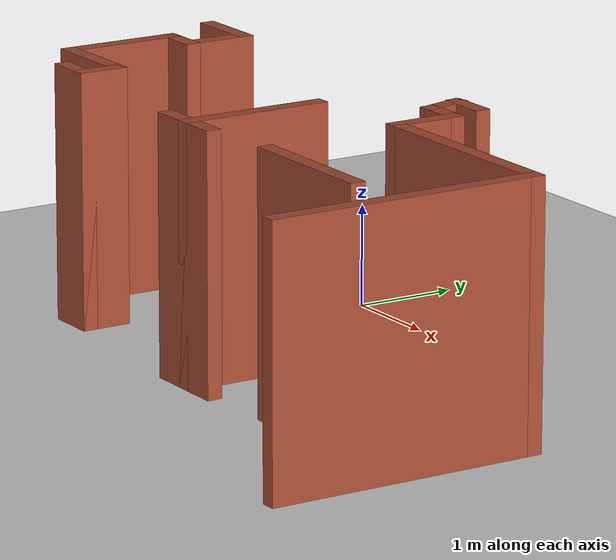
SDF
<sdf version="1.6">
 <world name="default">
  <model name="ground_plane">
   <static>1</static>
   <link name="link">
    <collision name="collision">
     <geometry><plane><normal>0 0 1</normal><size>100 100</size></plane></geometry>
     <surface><friction><ode><mu>100</mu><mu2>50</mu2></ode></friction></surface>
    </collision>
    <visual name="visual">
     <cast_shadows>0</cast_shadows>
     <geometry><plane><normal>0 0 1</normal><size>100 100</size></plane></geometry>
     <material>
      <script><uri>file://media/materials/scripts/gazebo.material</uri><name>Gazebo/Grey</name></script>
     </material>
    </visual>
   </link>
  </model>
  <model name="map_40">
   <link name="Wall_16">
    <pose>-2.925 0.522023 0 0 -0 0</pose>
    <visual name="Wall_16_Visual">
     <pose>0 0 1.25 0 -0 0</pose>
     <geometry><box><size>0.75 0.15 2.5</size></box></geometry>
     <material>
      <script><uri>file://media/materials/scripts/gazebo.material</uri><name>Gazebo/Bricks</name></script>
      <ambient>1 1 1 1</ambient>
      <shader type="pixel"/>
     </material>
     <meta><layer>0</layer></meta>
    </visual>
    <collision name="Wall_16_Collision">
     <pose>0 0 1.25 0 -0 0</pose>
     <geometry><box><size>0.75 0.15 2.5</size></box></geometry>
     <surface>
      <friction>
       <ode><mu>1</mu><mu2>1</mu2><fdir1>0 0 0</fdir1><slip1>0</slip1><slip2>0</slip2></ode>
       <torsional>
        <coefficient>1</coefficient>
        <patch_radius>0</patch_radius>
        <surface_radius>0</surface_radius>
        <use_patch_radius>1</use_patch_radius>
        <ode><slip>0</slip></ode>
       </torsional>
      </friction>
      <bounce><restitution_coefficient>0</restitution_coefficient><threshold>1e+06</threshold></bounce>
      <contact>
       <collide_without_contact>0</collide_without_contact>
       <collide_without_contact_bitmask>1</collide_without_contact_bitmask>
       <collide_bitmask>1</collide_bitmask>
       <ode>
        <soft_cfm>0</soft_cfm>
        <soft_erp>0.2</soft_erp>
        <kp>1e+13</kp>
        <kd>1</kd>
        <max_vel>0.01</max_vel>
        <min_depth>0</min_depth>
       </ode>
       <bullet>
        <split_impulse>1</split_impulse>
        <split_impulse_penetration_threshold>-0.01</split_impulse_penetration_threshold>
        <soft_cfm>0</soft_cfm>
        <soft_erp>0.2</soft_erp>
        <kp>1e+13</kp>
        <kd>1</kd>
       </bullet>
      </contact>
     </surface>
    </collision>
   </link>
   <link name="Wall_17">
    <pose>-2.625 0.222023 0 0 0 -1.5708</pose>
    <visual name="Wall_17_Visual">
     <pose>0 0 1.25 0 -0 0</pose>
     <geometry><box><size>0.75 0.15 2.5</size></box></geometry>
     <material>
      <script><uri>file://media/materials/scripts/gazebo.material</uri><name>Gazebo/Bricks</name></script>
      <ambient>1 1 1 1</ambient>
      <shader type="pixel"/>
     </material>
     <meta><layer>0</layer></meta>
    </visual>
    <collision name="Wall_17_Collision">
     <pose>0 0 1.25 0 -0 0</pose>
     <geometry><box><size>0.75 0.15 2.5</size></box></geometry>
     <surface>
      <friction>
       <ode><mu>1</mu><mu2>1</mu2><fdir1>0 0 0</fdir1><slip1>0</slip1><slip2>0</slip2></ode>
       <torsional>
        <coefficient>1</coefficient>
        <patch_radius>0</patch_radius>
        <surface_radius>0</surface_radius>
        <use_patch_radius>1</use_patch_radius>
        <ode><slip>0</slip></ode>
       </torsional>
      </friction>
      <bounce><restitution_coefficient>0</restitution_coefficient><threshold>1e+06</threshold></bounce>
      <contact>
       <collide_without_contact>0</collide_without_contact>
       <collide_without_contact_bitmask>1</collide_without_contact_bitmask>
       <collide_bitmask>1</collide_bitmask>
       <ode>
        <soft_cfm>0</soft_cfm>
        <soft_erp>0.2</soft_erp>
        <kp>1e+13</kp>
        <kd>1</kd>
        <max_vel>0.01</max_vel>
        <min_depth>0</min_depth>
       </ode>
       <bullet>
        <split_impulse>1</split_impulse>
        <split_impulse_penetration_threshold>-0.01</split_impulse_penetration_threshold>
        <soft_cfm>0</soft_cfm>
        <soft_erp>0.2</soft_erp>
        <kp>1e+13</kp>
        <kd>1</kd>
       </bullet>
      </contact>
     </surface>
    </collision>
   </link>
   <link name="Wall_18">
    <pose>-2.8 -0.077977 0 0 -0 3.14159</pose>
    <visual name="Wall_18_Visual">
     <pose>0 0 1.25 0 -0 0</pose>
     <geometry><box><size>0.5 0.15 2.5</size></box></geometry>
     <material>
      <script><uri>file://media/materials/scripts/gazebo.material</uri><name>Gazebo/Bricks</name></script>
      <ambient>1 1 1 1</ambient>
      <shader type="pixel"/>
     </material>
     <meta><layer>0</layer></meta>
    </visual>
    <collision name="Wall_18_Collision">
     <pose>0 0 1.25 0 -0 0</pose>
     <geometry><box><size>0.5 0.15 2.5</size></box></geometry>
     <surface>
      <friction>
       <ode><mu>1</mu><mu2>1</mu2><fdir1>0 0 0</fdir1><slip1>0</slip1><slip2>0</slip2></ode>
       <torsional>
        <coefficient>1</coefficient>
        <patch_radius>0</patch_radius>
        <surface_radius>0</surface_radius>
        <use_patch_radius>1</use_patch_radius>
        <ode><slip>0</slip></ode>
       </torsional>
      </friction>
      <bounce><restitution_coefficient>0</restitution_coefficient><threshold>1e+06</threshold></bounce>
      <contact>
       <collide_without_contact>0</collide_without_contact>
       <collide_without_contact_bitmask>1</collide_without_contact_bitmask>
       <collide_bitmask>1</collide_bitmask>
       <ode>
        <soft_cfm>0</soft_cfm>
        <soft_erp>0.2</soft_erp>
        <kp>1e+13</kp>
        <kd>1</kd>
        <max_vel>0.01</max_vel>
        <min_depth>0</min_depth>
       </ode>
       <bullet>
        <split_impulse>1</split_impulse>
        <split_impulse_penetration_threshold>-0.01</split_impulse_penetration_threshold>
        <soft_cfm>0</soft_cfm>
        <soft_erp>0.2</soft_erp>
        <kp>1e+13</kp>
        <kd>1</kd>
       </bullet>
      </contact>
     </surface>
    </collision>
   </link>
   <link name="Wall_19">
    <pose>-2.975 -0.627977 0 0 0 -1.5708</pose>
    <visual name="Wall_19_Visual">
     <pose>0 0 1.25 0 -0 0</pose>
     <geometry><box><size>1.25 0.15 2.5</size></box></geometry>
     <material>
      <script><uri>file://media/materials/scripts/gazebo.material</uri><name>Gazebo/Bricks</name></script>
      <ambient>1 1 1 1</ambient>
      <shader type="pixel"/>
     </material>
     <meta><layer>0</layer></meta>
    </visual>
    <collision name="Wall_19_Collision">
     <pose>0 0 1.25 0 -0 0</pose>
     <geometry><box><size>1.25 0.15 2.5</size></box></geometry>
     <surface>
      <friction>
       <ode><mu>1</mu><mu2>1</mu2><fdir1>0 0 0</fdir1><slip1>0</slip1><slip2>0</slip2></ode>
       <torsional>
        <coefficient>1</coefficient>
        <patch_radius>0</patch_radius>
        <surface_radius>0</surface_radius>
        <use_patch_radius>1</use_patch_radius>
        <ode><slip>0</slip></ode>
       </torsional>
      </friction>
      <bounce><restitution_coefficient>0</restitution_coefficient><threshold>1e+06</threshold></bounce>
      <contact>
       <collide_without_contact>0</collide_without_contact>
       <collide_without_contact_bitmask>1</collide_without_contact_bitmask>
       <collide_bitmask>1</collide_bitmask>
       <ode>
        <soft_cfm>0</soft_cfm>
        <soft_erp>0.2</soft_erp>
        <kp>1e+13</kp>
        <kd>1</kd>
        <max_vel>0.01</max_vel>
        <min_depth>0</min_depth>
       </ode>
       <bullet>
        <split_impulse>1</split_impulse>
        <split_impulse_penetration_threshold>-0.01</split_impulse_penetration_threshold>
        <soft_cfm>0</soft_cfm>
        <soft_erp>0.2</soft_erp>
        <kp>1e+13</kp>
        <kd>1</kd>
       </bullet>
      </contact>
     </surface>
    </collision>
   </link>
   <link name="Wall_20">
    <pose>-2.55 -1.17798 0 0 -0 0</pose>
    <visual name="Wall_20_Visual">
     <pose>0 0 1.25 0 -0 0</pose>
     <geometry><box><size>1 0.15 2.5</size></box></geometry>
     <material>
      <script><uri>file://media/materials/scripts/gazebo.material</uri><name>Gazebo/Bricks</name></script>
      <ambient>1 1 1 1</ambient>
      <shader type="pixel"/>
     </material>
     <meta><layer>0</layer></meta>
    </visual>
    <collision name="Wall_20_Collision">
     <pose>0 0 1.25 0 -0 0</pose>
     <geometry><box><size>1 0.15 2.5</size></box></geometry>
     <surface>
      <friction>
       <ode><mu>1</mu><mu2>1</mu2><fdir1>0 0 0</fdir1><slip1>0</slip1><slip2>0</slip2></ode>
       <torsional>
        <coefficient>1</coefficient>
        <patch_radius>0</patch_radius>
        <surface_radius>0</surface_radius>
        <use_patch_radius>1</use_patch_radius>
        <ode><slip>0</slip></ode>
       </torsional>
      </friction>
      <bounce><restitution_coefficient>0</restitution_coefficient><threshold>1e+06</threshold></bounce>
      <contact>
       <collide_without_contact>0</collide_without_contact>
       <collide_without_contact_bitmask>1</collide_without_contact_bitmask>
       <collide_bitmask>1</collide_bitmask>
       <ode>
        <soft_cfm>0</soft_cfm>
        <soft_erp>0.2</soft_erp>
        <kp>1e+13</kp>
        <kd>1</kd>
        <max_vel>0.01</max_vel>
        <min_depth>0</min_depth>
       </ode>
       <bullet>
        <split_impulse>1</split_impulse>
        <split_impulse_penetration_threshold>-0.01</split_impulse_penetration_threshold>
        <soft_cfm>0</soft_cfm>
        <soft_erp>0.2</soft_erp>
        <kp>1e+13</kp>
        <kd>1</kd>
       </bullet>
      </contact>
     </surface>
    </collision>
   </link>
   <link name="Wall_21">
    <pose>-2.125 -1.35298 0 0 0 -1.5708</pose>
    <visual name="Wall_21_Visual">
     <pose>0 0 1.25 0 -0 0</pose>
     <geometry><box><size>0.5 0.15 2.5</size></box></geometry>
     <material>
      <script><uri>file://media/materials/scripts/gazebo.material</uri><name>Gazebo/Bricks</name></script>
      <ambient>1 1 1 1</ambient>
      <shader type="pixel"/>
     </material>
     <meta><layer>0</layer></meta>
    </visual>
    <collision name="Wall_21_Collision">
     <pose>0 0 1.25 0 -0 0</pose>
     <geometry><box><size>0.5 0.15 2.5</size></box></geometry>
     <surface>
      <friction>
       <ode><mu>1</mu><mu2>1</mu2><fdir1>0 0 0</fdir1><slip1>0</slip1><slip2>0</slip2></ode>
       <torsional>
        <coefficient>1</coefficient>
        <patch_radius>0</patch_radius>
        <surface_radius>0</surface_radius>
        <use_patch_radius>1</use_patch_radius>
        <ode><slip>0</slip></ode>
       </torsional>
      </friction>
      <bounce><restitution_coefficient>0</restitution_coefficient><threshold>1e+06</threshold></bounce>
      <contact>
       <collide_without_contact>0</collide_without_contact>
       <collide_without_contact_bitmask>1</collide_without_contact_bitmask>
       <collide_bitmask>1</collide_bitmask>
       <ode>
        <soft_cfm>0</soft_cfm>
        <soft_erp>0.2</soft_erp>
        <kp>1e+13</kp>
        <kd>1</kd>
        <max_vel>0.01</max_vel>
        <min_depth>0</min_depth>
       </ode>
       <bullet>
        <split_impulse>1</split_impulse>
        <split_impulse_penetration_threshold>-0.01</split_impulse_penetration_threshold>
        <soft_cfm>0</soft_cfm>
        <soft_erp>0.2</soft_erp>
        <kp>1e+13</kp>
        <kd>1</kd>
       </bullet>
      </contact>
     </surface>
    </collision>
   </link>
   <link name="Wall_22">
    <pose>-2.3 -1.52798 0 0 -0 3.14159</pose>
    <visual name="Wall_22_Visual">
     <pose>0 0 1.25 0 -0 0</pose>
     <geometry><box><size>0.5 0.15 2.5</size></box></geometry>
     <material>
      <script><uri>file://media/materials/scripts/gazebo.material</uri><name>Gazebo/Bricks</name></script>
      <ambient>1 1 1 1</ambient>
      <shader type="pixel"/>
     </material>
     <meta><layer>0</layer></meta>
    </visual>
    <collision name="Wall_22_Collision">
     <pose>0 0 1.25 0 -0 0</pose>
     <geometry><box><size>0.5 0.15 2.5</size></box></geometry>
     <surface>
      <friction>
       <ode><mu>1</mu><mu2>1</mu2><fdir1>0 0 0</fdir1><slip1>0</slip1><slip2>0</slip2></ode>
       <torsional>
        <coefficient>1</coefficient>
        <patch_radius>0</patch_radius>
        <surface_radius>0</surface_radius>
        <use_patch_radius>1</use_patch_radius>
        <ode><slip>0</slip></ode>
       </torsional>
      </friction>
      <bounce><restitution_coefficient>0</restitution_coefficient><threshold>1e+06</threshold></bounce>
      <contact>
       <collide_without_contact>0</collide_without_contact>
       <collide_without_contact_bitmask>1</collide_without_contact_bitmask>
       <collide_bitmask>1</collide_bitmask>
       <ode>
        <soft_cfm>0</soft_cfm>
        <soft_erp>0.2</soft_erp>
        <kp>1e+13</kp>
        <kd>1</kd>
        <max_vel>0.01</max_vel>
        <min_depth>0</min_depth>
       </ode>
       <bullet>
        <split_impulse>1</split_impulse>
        <split_impulse_penetration_threshold>-0.01</split_impulse_penetration_threshold>
        <soft_cfm>0</soft_cfm>
        <soft_erp>0.2</soft_erp>
        <kp>1e+13</kp>
        <kd>1</kd>
       </bullet>
      </contact>
     </surface>
    </collision>
   </link>
   <link name="Wall_36">
    <pose>-0.15 -1.67798 0 0 -0 0</pose>
    <visual name="Wall_36_Visual">
     <pose>0 0 1.25 0 -0 0</pose>
     <geometry><box><size>0.5 0.15 2.5</size></box></geometry>
     <material>
      <script><uri>file://media/materials/scripts/gazebo.material</uri><name>Gazebo/Bricks</name></script>
      <ambient>1 1 1 1</ambient>
      <shader type="pixel"/>
     </material>
     <meta><layer>0</layer></meta>
    </visual>
    <collision name="Wall_36_Collision">
     <pose>0 0 1.25 0 -0 0</pose>
     <geometry><box><size>0.5 0.15 2.5</size></box></geometry>
     <surface>
      <friction>
       <ode><mu>1</mu><mu2>1</mu2><fdir1>0 0 0</fdir1><slip1>0</slip1><slip2>0</slip2></ode>
       <torsional>
        <coefficient>1</coefficient>
        <patch_radius>0</patch_radius>
        <surface_radius>0</surface_radius>
        <use_patch_radius>1</use_patch_radius>
        <ode><slip>0</slip></ode>
       </torsional>
      </friction>
      <bounce><restitution_coefficient>0</restitution_coefficient><threshold>1e+06</threshold></bounce>
      <contact>
       <collide_without_contact>0</collide_without_contact>
       <collide_without_contact_bitmask>1</collide_without_contact_bitmask>
       <collide_bitmask>1</collide_bitmask>
       <ode>
        <soft_cfm>0</soft_cfm>
        <soft_erp>0.2</soft_erp>
        <kp>1e+13</kp>
        <kd>1</kd>
        <max_vel>0.01</max_vel>
        <min_depth>0</min_depth>
       </ode>
       <bullet>
        <split_impulse>1</split_impulse>
        <split_impulse_penetration_threshold>-0.01</split_impulse_penetration_threshold>
        <soft_cfm>0</soft_cfm>
        <soft_erp>0.2</soft_erp>
        <kp>1e+13</kp>
        <kd>1</kd>
       </bullet>
      </contact>
     </surface>
    </collision>
   </link>
   <link name="Wall_37">
    <pose>0.025 -1.00298 0 0 -0 1.5708</pose>
    <visual name="Wall_37_Visual">
     <pose>0 0 1.25 0 -0 0</pose>
     <geometry><box><size>1.5 0.15 2.5</size></box></geometry>
     <material>
      <script><uri>file://media/materials/scripts/gazebo.material</uri><name>Gazebo/Bricks</name></script>
      <ambient>1 1 1 1</ambient>
      <shader type="pixel"/>
     </material>
     <meta><layer>0</layer></meta>
    </visual>
    <collision name="Wall_37_Collision">
     <pose>0 0 1.25 0 -0 0</pose>
     <geometry><box><size>1.5 0.15 2.5</size></box></geometry>
     <surface>
      <friction>
       <ode><mu>1</mu><mu2>1</mu2><fdir1>0 0 0</fdir1><slip1>0</slip1><slip2>0</slip2></ode>
       <torsional>
        <coefficient>1</coefficient>
        <patch_radius>0</patch_radius>
        <surface_radius>0</surface_radius>
        <use_patch_radius>1</use_patch_radius>
        <ode><slip>0</slip></ode>
       </torsional>
      </friction>
      <bounce><restitution_coefficient>0</restitution_coefficient><threshold>1e+06</threshold></bounce>
      <contact>
       <collide_without_contact>0</collide_without_contact>
       <collide_without_contact_bitmask>1</collide_without_contact_bitmask>
       <collide_bitmask>1</collide_bitmask>
       <ode>
        <soft_cfm>0</soft_cfm>
        <soft_erp>0.2</soft_erp>
        <kp>1e+13</kp>
        <kd>1</kd>
        <max_vel>0.01</max_vel>
        <min_depth>0</min_depth>
       </ode>
       <bullet>
        <split_impulse>1</split_impulse>
        <split_impulse_penetration_threshold>-0.01</split_impulse_penetration_threshold>
        <soft_cfm>0</soft_cfm>
        <soft_erp>0.2</soft_erp>
        <kp>1e+13</kp>
        <kd>1</kd>
       </bullet>
      </contact>
     </surface>
    </collision>
   </link>
   <link name="Wall_39">
    <pose>0.2 -1.67798 0 0 -0 0</pose>
    <visual name="Wall_39_Visual">
     <pose>0 0 1.25 0 -0 0</pose>
     <geometry><box><size>0.5 0.15 2.5</size></box></geometry>
     <material>
      <script><uri>file://media/materials/scripts/gazebo.material</uri><name>Gazebo/Bricks</name></script>
      <ambient>1 1 1 1</ambient>
      <shader type="pixel"/>
     </material>
     <meta><layer>0</layer></meta>
    </visual>
    <collision name="Wall_39_Collision">
     <pose>0 0 1.25 0 -0 0</pose>
     <geometry><box><size>0.5 0.15 2.5</size></box></geometry>
     <surface>
      <friction>
       <ode><mu>1</mu><mu2>1</mu2><fdir1>0 0 0</fdir1><slip1>0</slip1><slip2>0</slip2></ode>
       <torsional>
        <coefficient>1</coefficient>
        <patch_radius>0</patch_radius>
        <surface_radius>0</surface_radius>
        <use_patch_radius>1</use_patch_radius>
        <ode><slip>0</slip></ode>
       </torsional>
      </friction>
      <bounce><restitution_coefficient>0</restitution_coefficient><threshold>1e+06</threshold></bounce>
      <contact>
       <collide_without_contact>0</collide_without_contact>
       <collide_without_contact_bitmask>1</collide_without_contact_bitmask>
       <collide_bitmask>1</collide_bitmask>
       <ode>
        <soft_cfm>0</soft_cfm>
        <soft_erp>0.2</soft_erp>
        <kp>1e+13</kp>
        <kd>1</kd>
        <max_vel>0.01</max_vel>
        <min_depth>0</min_depth>
       </ode>
       <bullet>
        <split_impulse>1</split_impulse>
        <split_impulse_penetration_threshold>-0.01</split_impulse_penetration_threshold>
        <soft_cfm>0</soft_cfm>
        <soft_erp>0.2</soft_erp>
        <kp>1e+13</kp>
        <kd>1</kd>
       </bullet>
      </contact>
     </surface>
    </collision>
   </link>
   <link name="Wall_44">
    <pose>3.225 -1.47798 0 0 -0 1.5708</pose>
    <visual name="Wall_44_Visual">
     <pose>0 0 1.25 0 -0 0</pose>
     <geometry><box><size>2.75 0.15 2.5</size></box></geometry>
     <material>
      <script><uri>file://media/materials/scripts/gazebo.material</uri><name>Gazebo/Bricks</name></script>
      <ambient>1 1 1 1</ambient>
      <shader type="pixel"/>
     </material>
     <meta><layer>0</layer></meta>
    </visual>
    <collision name="Wall_44_Collision">
     <pose>0 0 1.25 0 -0 0</pose>
     <geometry><box><size>2.75 0.15 2.5</size></box></geometry>
     <surface>
      <friction>
       <ode><mu>1</mu><mu2>1</mu2><fdir1>0 0 0</fdir1><slip1>0</slip1><slip2>0</slip2></ode>
       <torsional>
        <coefficient>1</coefficient>
        <patch_radius>0</patch_radius>
        <surface_radius>0</surface_radius>
        <use_patch_radius>1</use_patch_radius>
        <ode><slip>0</slip></ode>
       </torsional>
      </friction>
      <bounce><restitution_coefficient>0</restitution_coefficient><threshold>1e+06</threshold></bounce>
      <contact>
       <collide_without_contact>0</collide_without_contact>
       <collide_without_contact_bitmask>1</collide_without_contact_bitmask>
       <collide_bitmask>1</collide_bitmask>
       <ode>
        <soft_cfm>0</soft_cfm>
        <soft_erp>0.2</soft_erp>
        <kp>1e+13</kp>
        <kd>1</kd>
        <max_vel>0.01</max_vel>
        <min_depth>0</min_depth>
       </ode>
       <bullet>
        <split_impulse>1</split_impulse>
        <split_impulse_penetration_threshold>-0.01</split_impulse_penetration_threshold>
        <soft_cfm>0</soft_cfm>
        <soft_erp>0.2</soft_erp>
        <kp>1e+13</kp>
        <kd>1</kd>
       </bullet>
      </contact>
     </surface>
    </collision>
   </link>
   <link name="Wall_49">
    <pose>2.175 -0.177977 0 0 -0 3.14159</pose>
    <visual name="Wall_49_Visual">
     <pose>0 0 1.25 0 -0 0</pose>
     <geometry><box><size>2.25 0.15 2.5</size></box></geometry>
     <material>
      <script><uri>file://media/materials/scripts/gazebo.material</uri><name>Gazebo/Bricks</name></script>
      <ambient>1 1 1 1</ambient>
      <shader type="pixel"/>
     </material>
     <meta><layer>0</layer></meta>
    </visual>
    <collision name="Wall_49_Collision">
     <pose>0 0 1.25 0 -0 0</pose>
     <geometry><box><size>2.25 0.15 2.5</size></box></geometry>
     <surface>
      <friction>
       <ode><mu>1</mu><mu2>1</mu2><fdir1>0 0 0</fdir1><slip1>0</slip1><slip2>0</slip2></ode>
       <torsional>
        <coefficient>1</coefficient>
        <patch_radius>0</patch_radius>
        <surface_radius>0</surface_radius>
        <use_patch_radius>1</use_patch_radius>
        <ode><slip>0</slip></ode>
       </torsional>
      </friction>
      <bounce><restitution_coefficient>0</restitution_coefficient><threshold>1e+06</threshold></bounce>
      <contact>
       <collide_without_contact>0</collide_without_contact>
       <collide_without_contact_bitmask>1</collide_without_contact_bitmask>
       <collide_bitmask>1</collide_bitmask>
       <ode>
        <soft_cfm>0</soft_cfm>
        <soft_erp>0.2</soft_erp>
        <kp>1e+13</kp>
        <kd>1</kd>
        <max_vel>0.01</max_vel>
        <min_depth>0</min_depth>
       </ode>
       <bullet>
        <split_impulse>1</split_impulse>
        <split_impulse_penetration_threshold>-0.01</split_impulse_penetration_threshold>
        <soft_cfm>0</soft_cfm>
        <soft_erp>0.2</soft_erp>
        <kp>1e+13</kp>
        <kd>1</kd>
       </bullet>
      </contact>
     </surface>
    </collision>
   </link>
   <link name="Wall_50">
    <pose>1.125 0.122023 0 0 -0 1.5708</pose>
    <visual name="Wall_50_Visual">
     <pose>0 0 1.25 0 -0 0</pose>
     <geometry><box><size>0.75 0.15 2.5</size></box></geometry>
     <material>
      <script><uri>file://media/materials/scripts/gazebo.material</uri><name>Gazebo/Bricks</name></script>
      <ambient>1 1 1 1</ambient>
      <shader type="pixel"/>
     </material>
     <meta><layer>0</layer></meta>
    </visual>
    <collision name="Wall_50_Collision">
     <pose>0 0 1.25 0 -0 0</pose>
     <geometry><box><size>0.75 0.15 2.5</size></box></geometry>
     <surface>
      <friction>
       <ode><mu>1</mu><mu2>1</mu2><fdir1>0 0 0</fdir1><slip1>0</slip1><slip2>0</slip2></ode>
       <torsional>
        <coefficient>1</coefficient>
        <patch_radius>0</patch_radius>
        <surface_radius>0</surface_radius>
        <use_patch_radius>1</use_patch_radius>
        <ode><slip>0</slip></ode>
       </torsional>
      </friction>
      <bounce><restitution_coefficient>0</restitution_coefficient><threshold>1e+06</threshold></bounce>
      <contact>
       <collide_without_contact>0</collide_without_contact>
       <collide_without_contact_bitmask>1</collide_without_contact_bitmask>
       <collide_bitmask>1</collide_bitmask>
       <ode>
        <soft_cfm>0</soft_cfm>
        <soft_erp>0.2</soft_erp>
        <kp>1e+13</kp>
        <kd>1</kd>
        <max_vel>0.01</max_vel>
        <min_depth>0</min_depth>
       </ode>
       <bullet>
        <split_impulse>1</split_impulse>
        <split_impulse_penetration_threshold>-0.01</split_impulse_penetration_threshold>
        <soft_cfm>0</soft_cfm>
        <soft_erp>0.2</soft_erp>
        <kp>1e+13</kp>
        <kd>1</kd>
       </bullet>
      </contact>
     </surface>
    </collision>
   </link>
   <link name="Wall_51">
    <pose>0.95 0.422023 0 0 -0 3.14159</pose>
    <visual name="Wall_51_Visual">
     <pose>0 0 1.25 0 -0 0</pose>
     <geometry><box><size>0.5 0.15 2.5</size></box></geometry>
     <material>
      <script><uri>file://media/materials/scripts/gazebo.material</uri><name>Gazebo/Bricks</name></script>
      <ambient>1 1 1 1</ambient>
      <shader type="pixel"/>
     </material>
     <meta><layer>0</layer></meta>
    </visual>
    <collision name="Wall_51_Collision">
     <pose>0 0 1.25 0 -0 0</pose>
     <geometry><box><size>0.5 0.15 2.5</size></box></geometry>
     <surface>
      <friction>
       <ode><mu>1</mu><mu2>1</mu2><fdir1>0 0 0</fdir1><slip1>0</slip1><slip2>0</slip2></ode>
       <torsional>
        <coefficient>1</coefficient>
        <patch_radius>0</patch_radius>
        <surface_radius>0</surface_radius>
        <use_patch_radius>1</use_patch_radius>
        <ode><slip>0</slip></ode>
       </torsional>
      </friction>
      <bounce><restitution_coefficient>0</restitution_coefficient><threshold>1e+06</threshold></bounce>
      <contact>
       <collide_without_contact>0</collide_without_contact>
       <collide_without_contact_bitmask>1</collide_without_contact_bitmask>
       <collide_bitmask>1</collide_bitmask>
       <ode>
        <soft_cfm>0</soft_cfm>
        <soft_erp>0.2</soft_erp>
        <kp>1e+13</kp>
        <kd>1</kd>
        <max_vel>0.01</max_vel>
        <min_depth>0</min_depth>
       </ode>
       <bullet>
        <split_impulse>1</split_impulse>
        <split_impulse_penetration_threshold>-0.01</split_impulse_penetration_threshold>
        <soft_cfm>0</soft_cfm>
        <soft_erp>0.2</soft_erp>
        <kp>1e+13</kp>
        <kd>1</kd>
       </bullet>
      </contact>
     </surface>
    </collision>
   </link>
   <link name="Wall_52">
    <pose>0.729707 0.59106 0 0 -0 1.8326</pose>
    <visual name="Wall_52_Visual">
     <pose>0 0 1.25 0 -0 0</pose>
     <geometry><box><size>0.5 0.15 2.5</size></box></geometry>
     <material>
      <script><uri>file://media/materials/scripts/gazebo.material</uri><name>Gazebo/Bricks</name></script>
      <ambient>1 1 1 1</ambient>
      <shader type="pixel"/>
     </material>
     <meta><layer>0</layer></meta>
    </visual>
    <collision name="Wall_52_Collision">
     <pose>0 0 1.25 0 -0 0</pose>
     <geometry><box><size>0.5 0.15 2.5</size></box></geometry>
     <surface>
      <friction>
       <ode><mu>1</mu><mu2>1</mu2><fdir1>0 0 0</fdir1><slip1>0</slip1><slip2>0</slip2></ode>
       <torsional>
        <coefficient>1</coefficient>
        <patch_radius>0</patch_radius>
        <surface_radius>0</surface_radius>
        <use_patch_radius>1</use_patch_radius>
        <ode><slip>0</slip></ode>
       </torsional>
      </friction>
      <bounce><restitution_coefficient>0</restitution_coefficient><threshold>1e+06</threshold></bounce>
      <contact>
       <collide_without_contact>0</collide_without_contact>
       <collide_without_contact_bitmask>1</collide_without_contact_bitmask>
       <collide_bitmask>1</collide_bitmask>
       <ode>
        <soft_cfm>0</soft_cfm>
        <soft_erp>0.2</soft_erp>
        <kp>1e+13</kp>
        <kd>1</kd>
        <max_vel>0.01</max_vel>
        <min_depth>0</min_depth>
       </ode>
       <bullet>
        <split_impulse>1</split_impulse>
        <split_impulse_penetration_threshold>-0.01</split_impulse_penetration_threshold>
        <soft_cfm>0</soft_cfm>
        <soft_erp>0.2</soft_erp>
        <kp>1e+13</kp>
        <kd>1</kd>
       </bullet>
      </contact>
     </surface>
    </collision>
   </link>
   <link name="Wall_53">
    <pose>0.859413 0.760097 0 0 -0 0</pose>
    <visual name="Wall_53_Visual">
     <pose>0 0 1.25 0 -0 0</pose>
     <geometry><box><size>0.5 0.15 2.5</size></box></geometry>
     <material>
      <script><uri>file://media/materials/scripts/gazebo.material</uri><name>Gazebo/Bricks</name></script>
      <ambient>1 1 1 1</ambient>
      <shader type="pixel"/>
     </material>
     <meta><layer>0</layer></meta>
    </visual>
    <collision name="Wall_53_Collision">
     <pose>0 0 1.25 0 -0 0</pose>
     <geometry><box><size>0.5 0.15 2.5</size></box></geometry>
     <surface>
      <friction>
       <ode><mu>1</mu><mu2>1</mu2><fdir1>0 0 0</fdir1><slip1>0</slip1><slip2>0</slip2></ode>
       <torsional>
        <coefficient>1</coefficient>
        <patch_radius>0</patch_radius>
        <surface_radius>0</surface_radius>
        <use_patch_radius>1</use_patch_radius>
        <ode><slip>0</slip></ode>
       </torsional>
      </friction>
      <bounce><restitution_coefficient>0</restitution_coefficient><threshold>1e+06</threshold></bounce>
      <contact>
       <collide_without_contact>0</collide_without_contact>
       <collide_without_contact_bitmask>1</collide_without_contact_bitmask>
       <collide_bitmask>1</collide_bitmask>
       <ode>
        <soft_cfm>0</soft_cfm>
        <soft_erp>0.2</soft_erp>
        <kp>1e+13</kp>
        <kd>1</kd>
        <max_vel>0.01</max_vel>
        <min_depth>0</min_depth>
       </ode>
       <bullet>
        <split_impulse>1</split_impulse>
        <split_impulse_penetration_threshold>-0.01</split_impulse_penetration_threshold>
        <soft_cfm>0</soft_cfm>
        <soft_erp>0.2</soft_erp>
        <kp>1e+13</kp>
        <kd>1</kd>
       </bullet>
      </contact>
     </surface>
    </collision>
   </link>
   <link name="Wall_74">
    <pose>1.90482 -1.58904 0 0 -0 0</pose>
    <visual name="Wall_74_Visual">
     <pose>0 0 1.25 0 -0 0</pose>
     <geometry><box><size>1.5 0.15 2.5</size></box></geometry>
     <material>
      <script><uri>file://media/materials/scripts/gazebo.material</uri><name>Gazebo/Bricks</name></script>
      <ambient>1 1 1 1</ambient>
      <shader type="pixel"/>
     </material>
     <meta><layer>0</layer></meta>
    </visual>
    <collision name="Wall_74_Collision">
     <pose>0 0 1.25 0 -0 0</pose>
     <geometry><box><size>1.5 0.15 2.5</size></box></geometry>
     <surface>
      <friction>
       <ode><mu>1</mu><mu2>1</mu2><fdir1>0 0 0</fdir1><slip1>0</slip1><slip2>0</slip2></ode>
       <torsional>
        <coefficient>1</coefficient>
        <patch_radius>0</patch_radius>
        <surface_radius>0</surface_radius>
        <use_patch_radius>1</use_patch_radius>
        <ode><slip>0</slip></ode>
       </torsional>
      </friction>
      <bounce><restitution_coefficient>0</restitution_coefficient><threshold>1e+06</threshold></bounce>
      <contact>
       <collide_without_contact>0</collide_without_contact>
       <collide_without_contact_bitmask>1</collide_without_contact_bitmask>
       <collide_bitmask>1</collide_bitmask>
       <ode>
        <soft_cfm>0</soft_cfm>
        <soft_erp>0.2</soft_erp>
        <kp>1e+13</kp>
        <kd>1</kd>
        <max_vel>0.01</max_vel>
        <min_depth>0</min_depth>
       </ode>
       <bullet>
        <split_impulse>1</split_impulse>
        <split_impulse_penetration_threshold>-0.01</split_impulse_penetration_threshold>
        <soft_cfm>0</soft_cfm>
        <soft_erp>0.2</soft_erp>
        <kp>1e+13</kp>
        <kd>1</kd>
       </bullet>
      </contact>
     </surface>
    </collision>
   </link>
   <link name="link_2">
    <inertial>
     <mass>1</mass>
     <inertia><ixx>0.145833</ixx><ixy>0</ixy><ixz>0</ixz><iyy>0.145833</iyy><iyz>0</iyz><izz>0.125</izz></inertia>
    </inertial>
    <pose>-1.19458 -0.323003 0.5 0 -0 0</pose>
    <visual name="visual">
     <geometry><cylinder><radius>0.5</radius><length>1</length></cylinder></geometry>
     <material>
      <lighting>1</lighting>
      <script><uri>file://media/materials/scripts/gazebo.material</uri><name>Gazebo/Grey</name></script>
      <shader type="pixel"/>
     </material>
    </visual>
    <collision name="collision">
     <geometry><cylinder><radius>0.5</radius><length>1</length></cylinder></geometry>
     <surface>
      <friction>
       <ode><mu>1</mu><mu2>1</mu2><fdir1>0 0 0</fdir1><slip1>0</slip1><slip2>0</slip2></ode>
       <torsional>
        <coefficient>1</coefficient>
        <patch_radius>0</patch_radius>
        <surface_radius>0</surface_radius>
        <use_patch_radius>1</use_patch_radius>
        <ode><slip>0</slip></ode>
       </torsional>
      </friction>
      <bounce><restitution_coefficient>0</restitution_coefficient><threshold>1e+06</threshold></bounce>
      <contact>
       <collide_without_contact>0</collide_without_contact>
       <collide_without_contact_bitmask>1</collide_without_contact_bitmask>
       <collide_bitmask>1</collide_bitmask>
       <ode>
        <soft_cfm>0</soft_cfm>
        <soft_erp>0.2</soft_erp>
        <kp>1e+13</kp>
        <kd>1</kd>
        <max_vel>0.01</max_vel>
        <min_depth>0</min_depth>
       </ode>
       <bullet>
        <split_impulse>1</split_impulse>
        <split_impulse_penetration_threshold>-0.01</split_impulse_penetration_threshold>
        <soft_cfm>0</soft_cfm>
        <soft_erp>0.2</soft_erp>
        <kp>1e+13</kp>
        <kd>1</kd>
       </bullet>
      </contact>
     </surface>
    </collision>
   </link>
   <static>1</static>
   <pose>1.38689 -1.09784 0 0 -0 0</pose>
  </model>
  <model name="6_Cube_StorageE_0">
   <link name="Wall_0">
    <pose>0 0 0.01 0 -0 0</pose>
    <inertial>
     <mass>1.6201</mass>
     <inertia><ixx>0.0119</ixx><iyy>0.0631</iyy><izz>0.0513</izz><ixy>0</ixy><ixz>0</ixz><iyz>0</iyz></inertia>
    </inertial>
    <collision name="Wall_0_Collision"><geometry><box><size>0.616 0.296 0.02</size></box></geometry></collision>
    <visual name="Wall_0_Visual">
     <geometry><box><size>0.616 0.296 0.02</size></box></geometry>
     <material>
      <script><uri>file://media/materials/scripts/gazebo.material</uri><name>Gazebo/Grey</name></script>
      <ambient>0.105882 0.0509804 0 1</ambient>
     </material>
    </visual>
   </link>
   <joint name="0_2" type="fixed">
    <pose>-0.308 0 0 0 -0 0</pose>
    <parent>Wall_2</parent>
    <child>Wall_0</child>
    <axis>
     <xyz>1 0 0</xyz>
     <use_parent_model_frame>0</use_parent_model_frame>
     <limit><lower>-1e+16</lower><upper>1e+16</upper></limit>
    </axis>
   </joint>
   <joint name="0_12" type="fixed">
    <parent>Wall_12</parent>
    <child>Wall_0</child>
    <axis>
     <xyz>0 0 1</xyz>
     <use_parent_model_frame>0</use_parent_model_frame>
     <limit><lower>-1e+16</lower><upper>1e+16</upper></limit>
    </axis>
   </joint>
   <joint name="0_4" type="fixed">
    <pose>0.308 0 0 0 -0 0</pose>
    <parent>Wall_4</parent>
    <child>Wall_0</child>
    <axis>
     <xyz>1 0 0</xyz>
     <use_parent_model_frame>0</use_parent_model_frame>
     <limit><lower>-1e+16</lower><upper>1e+16</upper></limit>
    </axis>
   </joint>
   <link name="Wall_10">
    <pose>0 0 0.61 0 -0 0</pose>
    <inertial>
     <mass>1.6201</mass>
     <inertia><ixx>0.0119</ixx><iyy>0.0631</iyy><izz>0.0513</izz><ixy>0</ixy><ixz>0</ixz><iyz>0</iyz></inertia>
    </inertial>
    <collision name="Wall_10_Collision"><geometry><box><size>0.616 0.296 0.02</size></box></geometry></collision>
    <visual name="Wall_10_Visual">
     <geometry><box><size>0.616 0.296 0.02</size></box></geometry>
     <material>
      <script><uri>file://media/materials/scripts/gazebo.material</uri><name>Gazebo/Grey</name></script>
      <ambient>0.105882 0.0509804 0 1</ambient>
     </material>
    </visual>
   </link>
   <joint name="10_2" type="fixed">
    <pose>-0.308 0 0 0 -0 0</pose>
    <parent>Wall_2</parent>
    <child>Wall_10</child>
    <axis>
     <xyz>1 0 0</xyz>
     <use_parent_model_frame>0</use_parent_model_frame>
     <limit><lower>-1e+16</lower><upper>1e+16</upper></limit>
    </axis>
   </joint>
   <joint name="10_12" type="fixed">
    <parent>Wall_12</parent>
    <child>Wall_10</child>
    <axis>
     <xyz>0 0 1</xyz>
     <use_parent_model_frame>0</use_parent_model_frame>
     <limit><lower>-1e+16</lower><upper>1e+16</upper></limit>
    </axis>
   </joint>
   <joint name="10_4" type="fixed">
    <pose>0.308 0 0 0 -0 0</pose>
    <parent>Wall_4</parent>
    <child>Wall_10</child>
    <axis>
     <xyz>1 0 0</xyz>
     <use_parent_model_frame>0</use_parent_model_frame>
     <limit><lower>-1e+16</lower><upper>1e+16</upper></limit>
    </axis>
   </joint>
   <link name="Wall_12">
    <pose>0 0 0.4575 0 -0 0</pose>
    <inertial>
     <mass>2.4065</mass>
     <inertia><ixx>0.0177</ixx><iyy>0.1855</iyy><izz>0.168</izz><ixy>0</ixy><ixz>0</ixz><iyz>0</iyz></inertia>
    </inertial>
    <collision name="Wall_12_Collision"><geometry><box><size>0.02 0.296 0.915</size></box></geometry></collision>
    <visual name="Wall_12_Visual">
     <geometry><box><size>0.02 0.296 0.915</size></box></geometry>
     <material>
      <script><uri>file://media/materials/scripts/gazebo.material</uri><name>Gazebo/Grey</name></script>
      <ambient>0.105882 0.0509804 0 1</ambient>
     </material>
    </visual>
   </link>
   <link name="Wall_2">
    <pose>-0.298 0 0.4575 0 -0 0</pose>
    <inertial>
     <mass>2.4065</mass>
     <inertia><ixx>0.0177</ixx><iyy>0.1855</iyy><izz>0.168</izz><ixy>0</ixy><ixz>0</ixz><iyz>0</iyz></inertia>
    </inertial>
    <collision name="Wall_2_Collision"><geometry><box><size>0.02 0.296 0.915</size></box></geometry></collision>
    <visual name="Wall_2_Visual">
     <geometry><box><size>0.02 0.296 0.915</size></box></geometry>
     <material>
      <script><uri>file://media/materials/scripts/gazebo.material</uri><name>Gazebo/Grey</name></script>
      <ambient>0.105882 0.0509804 0 1</ambient>
     </material>
    </visual>
   </link>
   <link name="Wall_4">
    <pose>0.298 0 0.4575 0 -0 0</pose>
    <inertial>
     <mass>2.4065</mass>
     <inertia><ixx>0.0177</ixx><iyy>0.1855</iyy><izz>0.168</izz><ixy>0</ixy><ixz>0</ixz><iyz>0</iyz></inertia>
    </inertial>
    <collision name="Wall_4_Collision"><geometry><box><size>0.02 0.296 0.915</size></box></geometry></collision>
    <visual name="Wall_4_Visual">
     <geometry><box><size>0.02 0.296 0.915</size></box></geometry>
     <material>
      <script><uri>file://media/materials/scripts/gazebo.material</uri><name>Gazebo/Grey</name></script>
      <ambient>0.105882 0.0509804 0 1</ambient>
     </material>
    </visual>
   </link>
   <link name="Wall_6">
    <pose>0 0 0.905 0 -0 0</pose>
    <inertial>
     <mass>1.6201</mass>
     <inertia><ixx>0.0119</ixx><iyy>0.0631</iyy><izz>0.0513</izz><ixy>0</ixy><ixz>0</ixz><iyz>0</iyz></inertia>
    </inertial>
    <collision name="Wall_6_Collision"><geometry><box><size>0.616 0.296 0.02</size></box></geometry></collision>
    <visual name="Wall_6_Visual">
     <geometry><box><size>0.616 0.296 0.02</size></box></geometry>
     <material>
      <script><uri>file://media/materials/scripts/gazebo.material</uri><name>Gazebo/Grey</name></script>
      <ambient>0.105882 0.0509804 0 1</ambient>
     </material>
    </visual>
   </link>
   <joint name="6_2" type="fixed">
    <pose>-0.308 0 0 0 -0 0</pose>
    <parent>Wall_2</parent>
    <child>Wall_6</child>
    <axis>
     <xyz>2 0 0</xyz>
     <use_parent_model_frame>0</use_parent_model_frame>
     <limit><lower>-1e+16</lower><upper>1e+16</upper></limit>
    </axis>
   </joint>
   <joint name="6_12" type="fixed">
    <parent>Wall_12</parent>
    <child>Wall_6</child>
    <axis>
     <xyz>0 0 1</xyz>
     <use_parent_model_frame>0</use_parent_model_frame>
     <limit><lower>-1e+16</lower><upper>1e+16</upper></limit>
    </axis>
   </joint>
   <joint name="6_4" type="fixed">
    <pose>0.308 0 0 0 -0 0</pose>
    <parent>Wall_4</parent>
    <child>Wall_6</child>
    <axis>
     <xyz>1 0 0</xyz>
     <use_parent_model_frame>0</use_parent_model_frame>
     <limit><lower>-1e+16</lower><upper>1e+16</upper></limit>
    </axis>
   </joint>
   <link name="Wall_8">
    <pose>0 0 0.305 0 -0 0</pose>
    <inertial>
     <mass>1.6201</mass>
     <inertia><ixx>0.0119</ixx><iyy>0.0631</iyy><izz>0.0513</izz><ixy>0</ixy><ixz>0</ixz><iyz>0</iyz></inertia>
    </inertial>
    <collision name="Wall_8_Collision"><geometry><box><size>0.616 0.296 0.02</size></box></geometry></collision>
    <visual name="Wall_8_Visual">
     <geometry><box><size>0.616 0.296 0.02</size></box></geometry>
     <material>
      <script><uri>file://media/materials/scripts/gazebo.material</uri><name>Gazebo/Grey</name></script>
      <ambient>0.105882 0.0509804 0 1</ambient>
     </material>
    </visual>
   </link>
   <joint name="8_2" type="fixed">
    <pose>-0.308 0 0 0 -0 0</pose>
    <parent>Wall_2</parent>
    <child>Wall_8</child>
    <axis>
     <xyz>1 0 0</xyz>
     <use_parent_model_frame>0</use_parent_model_frame>
     <limit><lower>-1e+16</lower><upper>1e+16</upper></limit>
    </axis>
   </joint>
   <joint name="8_12" type="fixed">
    <parent>Wall_12</parent>
    <child>Wall_8</child>
    <axis>
     <xyz>0 0 1</xyz>
     <use_parent_model_frame>0</use_parent_model_frame>
     <limit><lower>-1e+16</lower><upper>1e+16</upper></limit>
    </axis>
   </joint>
   <joint name="8_4" type="fixed">
    <pose>0.308 0 0 0 -0 0</pose>
    <parent>Wall_4</parent>
    <child>Wall_8</child>
    <axis>
     <xyz>1 0 0</xyz>
     <use_parent_model_frame>0</use_parent_model_frame>
     <limit><lower>-1e+16</lower><upper>1e+16</upper></limit>
    </axis>
   </joint>
   <static>1</static>
   <pose>1.32809 -0.339668 0 0 -0 0</pose>
  </model>
 </world>
</sdf>
